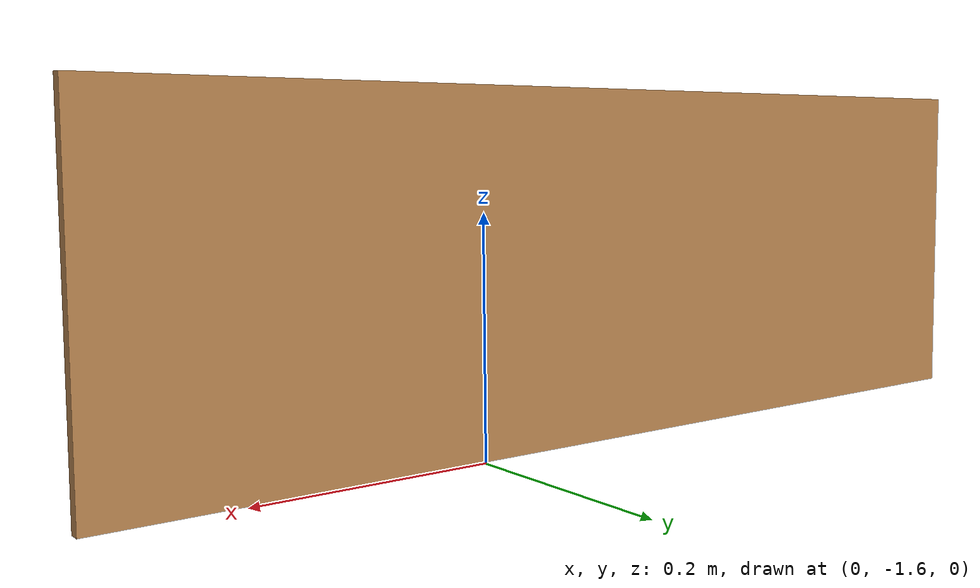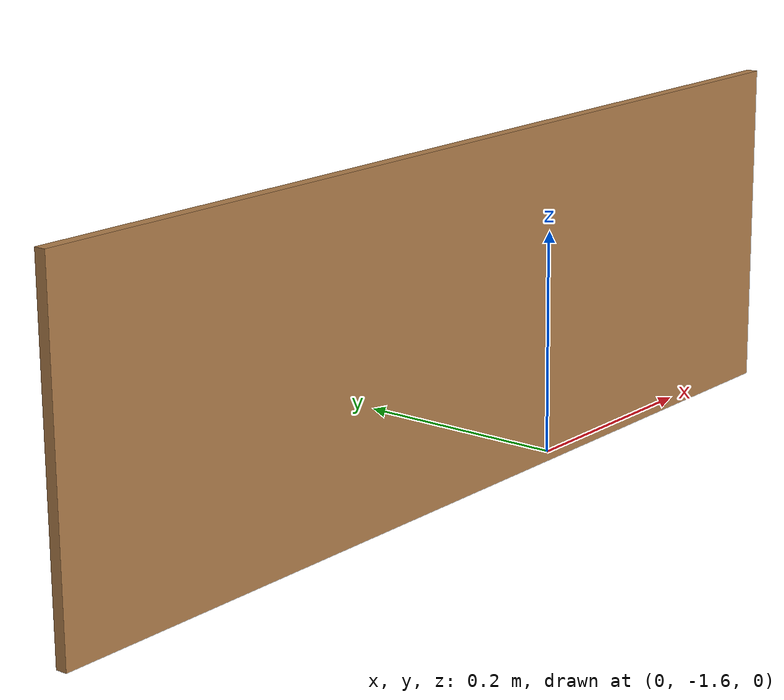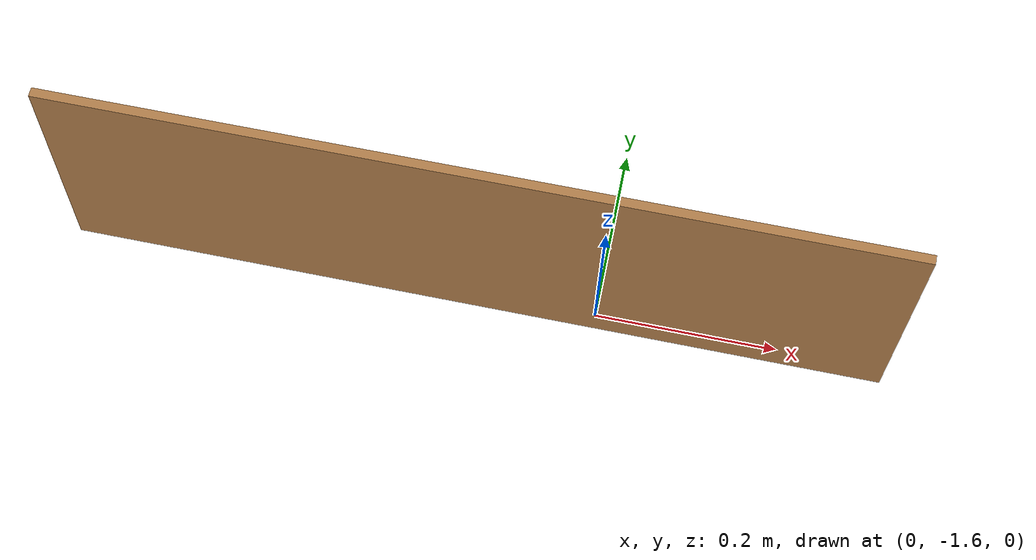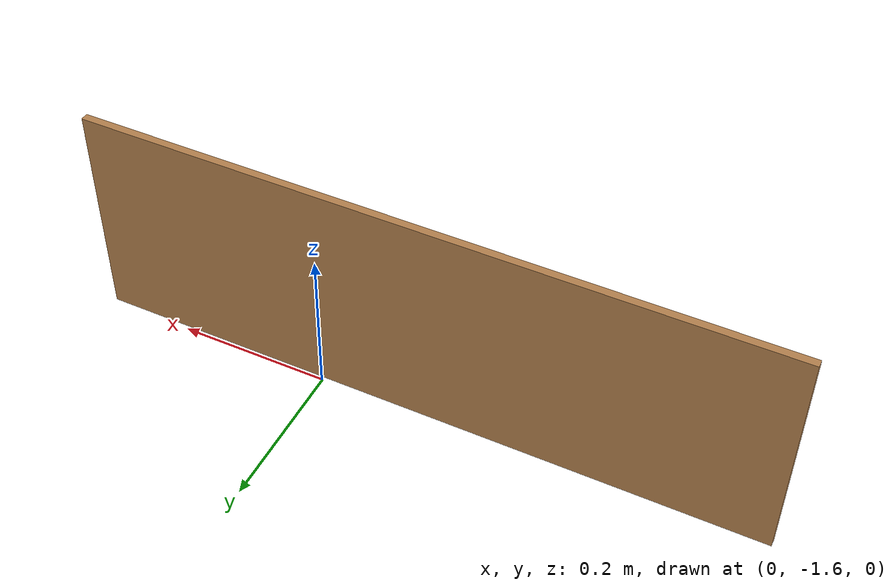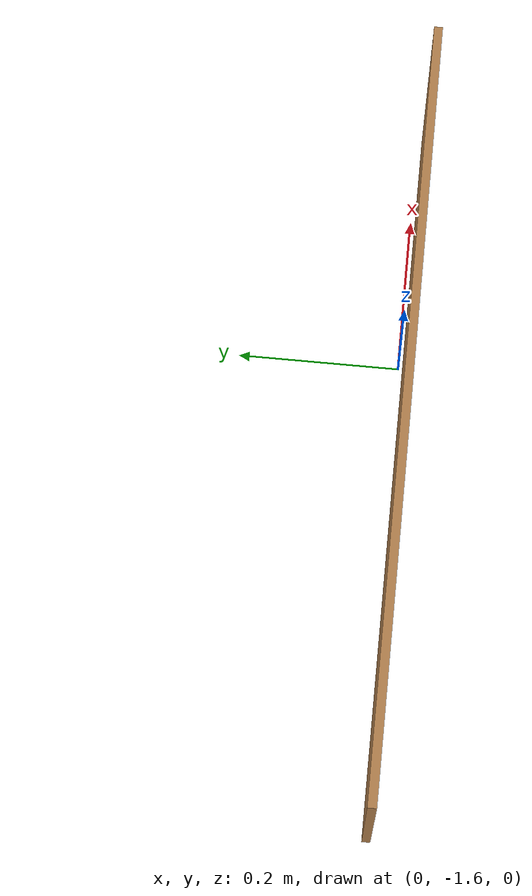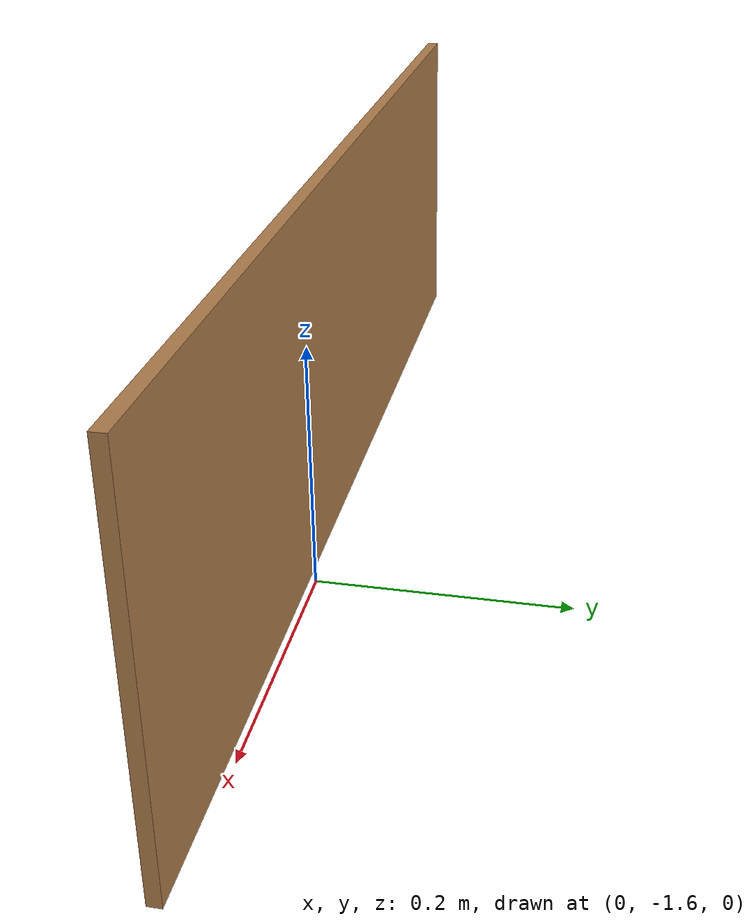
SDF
<?xml version='1.0'?>
<sdf version='1.7'>
  <model name='Wall_90'>
    <pose>-0.135 -0.8075 0 0 -0 0</pose>
    <link name='Wall_0'>
      <collision name='Wall_0_Collision'>
        <geometry>
          <box>
            <size>0.9 0.01 0.3</size>
          </box>
        </geometry>
        <pose>0 0 0.15 0 -0 0</pose>
      </collision>
      <visual name='Wall_0_Visual'>
        <pose>0 0 0.15 0 -0 0</pose>
        <geometry>
          <box>
            <size>0.9 0.01 0.3</size>
          </box>
        </geometry>
        <material>
          <script>
            <uri>file://media/materials/scripts/gazebo.material</uri>
            <name>Gazebo/Wood</name>
          </script>
          <ambient>1 1 1 1</ambient>
        </material>
        <meta>
          <layer>0</layer>
        </meta>
      </visual>
      <pose>-0 -0.8025 0 0 -0 3.14159</pose>
    </link>
    <static>1</static>
  </model>
</sdf>
